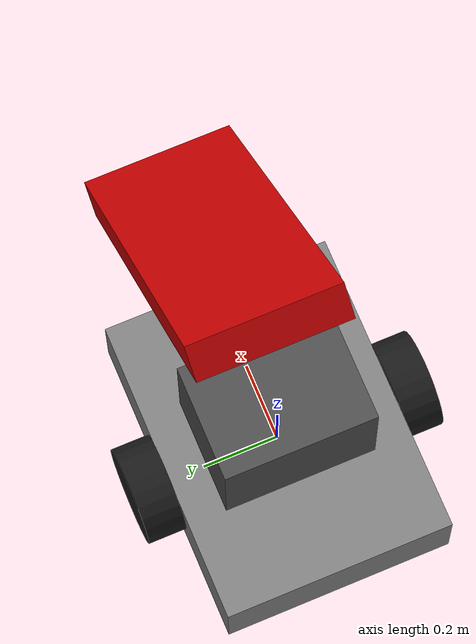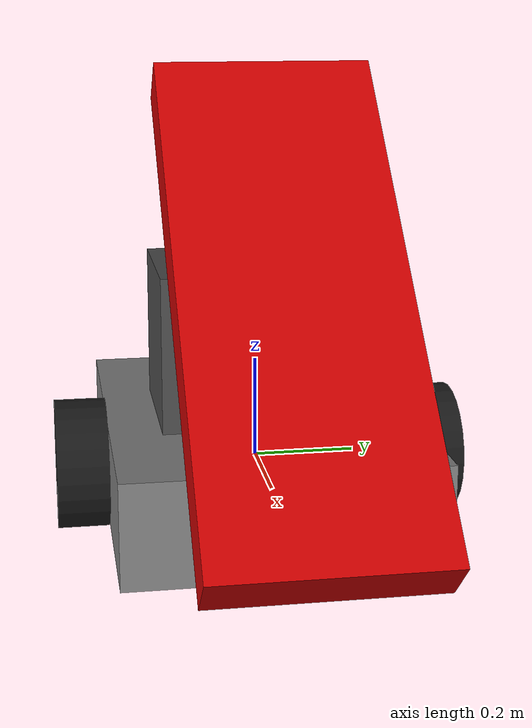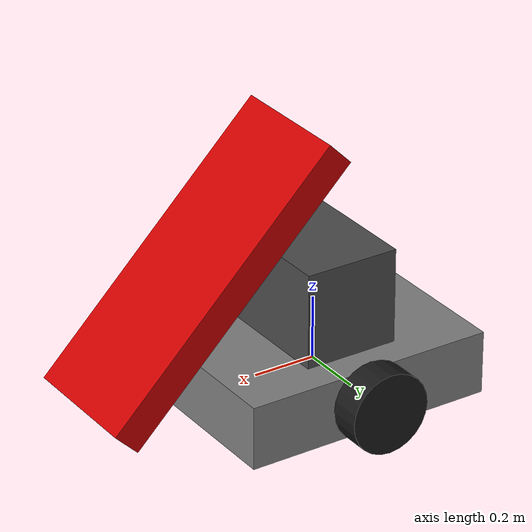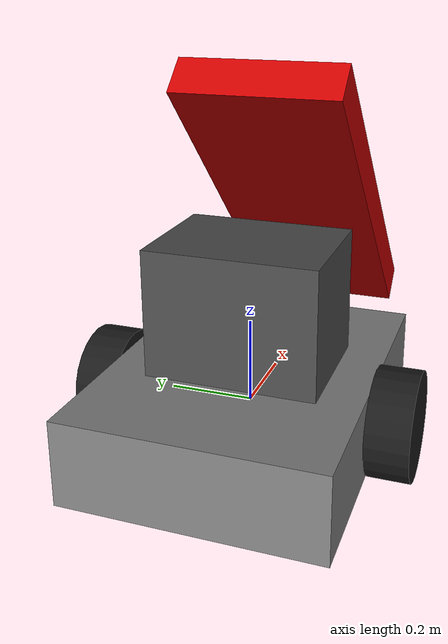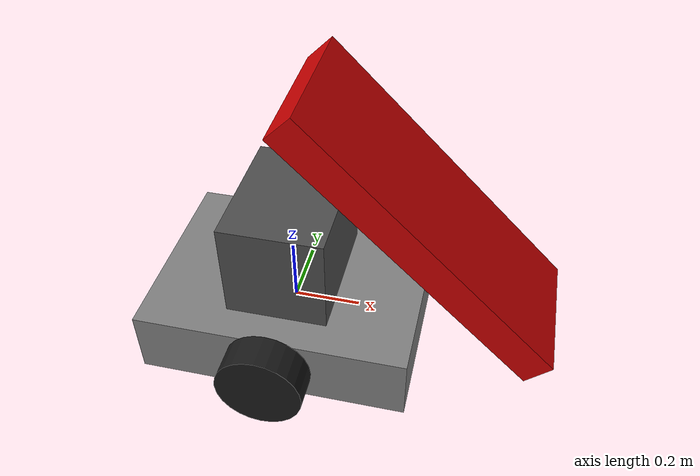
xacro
<?xml version="1.0"?>
<robot name="mining_robot">
    <!-- Base Link (Main Chassis) -->
    <link name="base_link">
        <visual>
            <geometry>
                <box size="0.8 0.6 0.2"/>
            </geometry>
            <material name="gray">
                <color rgba="0.5 0.5 0.5 1"/>
            </material>
        </visual>
        <collision>
            <geometry>
                <box size="0.8 0.6 0.2"/>
            </geometry>
        </collision>
        <inertial>
            <mass value="50.0"/>
            <inertia ixx="1.0" ixy="0.0" ixz="0.0" iyy="1.0" iyz="0.0" izz="1.0"/>
        </inertial>
    </link>

    <!-- Electronics Box -->
    <link name="electronics_box">
        <visual>
            <geometry>
                <box size="0.3 0.4 0.3"/>
            </geometry>
            <material name="dark_gray">
                <color rgba="0.3 0.3 0.3 1"/>
            </material>
        </visual>
        <collision>
            <geometry>
                <box size="0.3 0.4 0.3"/>
            </geometry>
        </collision>
        <inertial>
            <mass value="5.0"/>
            <inertia ixx="0.1" ixy="0.0" ixz="0.0" iyy="0.1" iyz="0.0" izz="0.1"/>
        </inertial>
    </link>

    <!-- Electronics Box Joint -->
    <joint name="electronics_box_joint" type="fixed">
        <parent link="base_link"/>
        <child link="electronics_box"/>
        <origin xyz="0 0 0.25" rpy="0 0 0"/>
    </joint>

    <!-- Wheels -->
    <link name="left_wheel">
        <visual>
            <geometry>
                <cylinder radius="0.127" length="0.1"/>
            </geometry>
            <material name="black">
                <color rgba="0.1 0.1 0.1 1"/>
            </material>
        </visual>
        <collision>
            <geometry>
                <cylinder radius="0.127" length="0.1"/>
            </geometry>
        </collision>
        <inertial>
            <mass value="5.0"/>
            <inertia ixx="0.1" ixy="0.0" ixz="0.0" iyy="0.1" iyz="0.0" izz="0.1"/>
        </inertial>
    </link>

    <link name="right_wheel">
        <visual>
            <geometry>
                <cylinder radius="0.127" length="0.1"/>
            </geometry>
            <material name="black"/>
        </visual>
        <collision>
            <geometry>
                <cylinder radius="0.127" length="0.1"/>
            </geometry>
        </collision>
        <inertial>
            <mass value="5.0"/>
            <inertia ixx="0.1" ixy="0.0" ixz="0.0" iyy="0.1" iyz="0.0" izz="0.1"/>
        </inertial>
    </link>

    <!-- Wheel Joints -->
    <joint name="left_wheel_joint" type="continuous">
        <parent link="base_link"/>
        <child link="left_wheel"/>
        <origin xyz="0 0.35 0" rpy="-1.5708 0 0"/>
        <axis xyz="0 0 1"/>
    </joint>

    <joint name="right_wheel_joint" type="continuous">
        <parent link="base_link"/>
        <child link="right_wheel"/>
        <origin xyz="0 -0.35 0" rpy="-1.5708 0 0"/>
        <axis xyz="0 0 1"/>
    </joint>

    <!-- Conveyor System -->
    <link name="conveyor">
        <visual>
            <geometry>
                <box size="1.0 0.4 0.1"/>
            </geometry>
            <material name="red">
                <color rgba="0.8 0.0 0.0 1"/>
            </material>
        </visual>
        <collision>
            <geometry>
                <box size="1.0 0.4 0.1"/>
            </geometry>
        </collision>
        <inertial>
            <mass value="10.0"/>
            <inertia ixx="0.1" ixy="0.0" ixz="0.0" iyy="0.1" iyz="0.0" izz="0.1"/>
        </inertial>
    </link>

    <!-- Conveyor Joint -->
    <joint name="conveyor_joint" type="revolute">
        <parent link="base_link"/>
        <child link="conveyor"/>
        <origin xyz="0.4 0 0.4" rpy="0 0.7854 0"/>
        <axis xyz="0 1 0"/>
        <limit lower="-1.5708" upper="1.5708" effort="100" velocity="1.0"/>
    </joint>

    <!-- Gazebo plugin for differential drive -->
    <gazebo>
        <plugin name="differential_drive_controller" filename="libgazebo_ros_diff_drive.so">
            <leftJoint>left_wheel_joint</leftJoint>
            <rightJoint>right_wheel_joint</rightJoint>
            <wheelSeparation>0.7</wheelSeparation>
            <wheelDiameter>0.254</wheelDiameter>
            <robotBaseFrame>base_link</robotBaseFrame>
            <publishWheelTF>true</publishWheelTF>
            <publishWheelJointState>true</publishWheelJointState>
            <wheelAcceleration>1.0</wheelAcceleration>
            <wheelTorque>20</wheelTorque>
            <odometryFrame>odom</odometryFrame>
            <commandTopic>cmd_vel</commandTopic>
            <odometryTopic>odom</odometryTopic>
            <odometrySource>world</odometrySource>
            <publishOdomTF>true</publishOdomTF>
        </plugin>
    </gazebo>

    <gazebo>
    <plugin name="gazebo_ros2_control" filename="libgazebo_ros2_control.so">
        <parameters>$(find robot_description)/config/controller_config.yaml</parameters>
    </plugin>
    </gazebo>

</robot>
